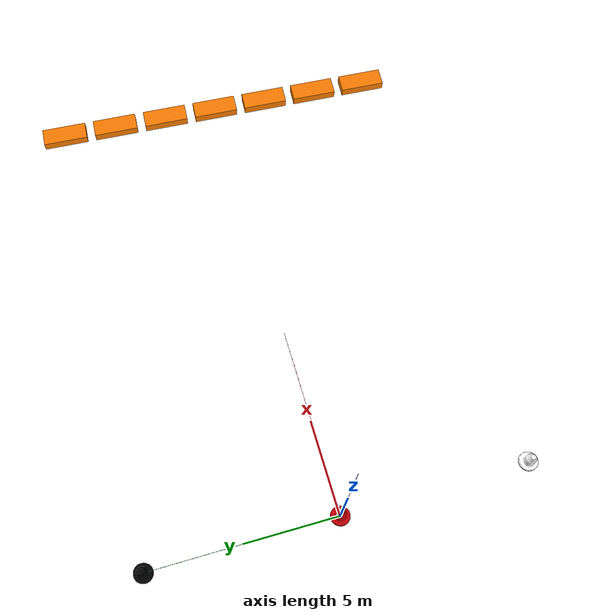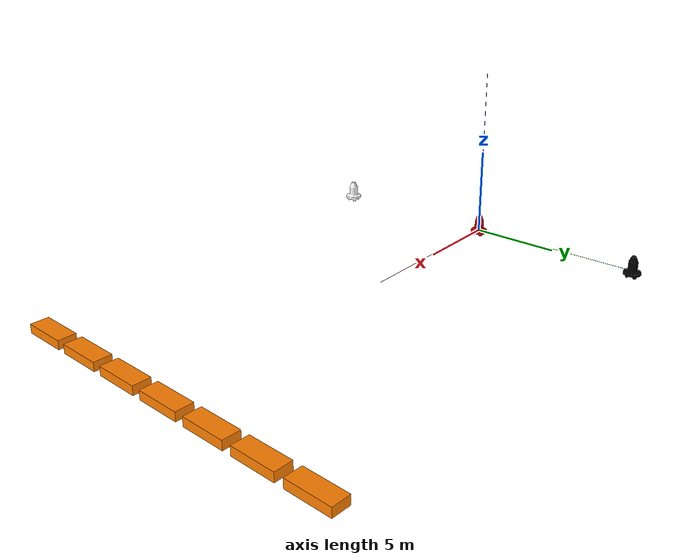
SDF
<sdf version="1.6">
 <world name="waves">
  <plugin filename="gz-sim-physics-system" name="gz::sim::systems::Physics"/>
  <plugin filename="gz-sim-sensors-system" name="gz::sim::systems::Sensors">
   <render_engine>ogre2</render_engine>
   <background_color>0.8 0.8 0.8</background_color>
  </plugin>
  <plugin filename="gz-sim-scene-broadcaster-system" name="gz::sim::systems::SceneBroadcaster"/>
  <plugin filename="gz-sim-user-commands-system" name="gz::sim::systems::UserCommands"/>
  <plugin filename="gz-sim-imu-system" name="gz::sim::systems::Imu"/>
  <scene><ambient>1.0 1.0 1.0</ambient><background>0.8 0.8 0.8</background></scene>
  <light type="directional" name="sun">
   <pose>0 0 10 0 0 0</pose>
   <diffuse>0.8 0.8 0.8 1</diffuse>
   <specular>0.6 0.6 0.6 1</specular>
   <direction>-0.5 0.1 -0.9</direction>
  </light>
  <model name="axes">
   <static>1</static>
   <link name="link">
    <visual name="r">
     <cast_shadows>0</cast_shadows>
     <pose>5 0 0.1 0 0 0</pose>
     <geometry><box><size>10 0.01 0.01</size></box></geometry>
     <material>
      <ambient>1 0 0 1</ambient>
      <diffuse>1 0 0 1</diffuse>
      <emissive>1 0 0 1</emissive>
      <specular>0.5 0.5 0.5 1</specular>
     </material>
    </visual>
    <visual name="g">
     <cast_shadows>0</cast_shadows>
     <pose>0 5 0.1 0 0 0</pose>
     <geometry><box><size>0.01 10 0.01</size></box></geometry>
     <material>
      <ambient>0 1 0 1</ambient>
      <diffuse>0 1 0 1</diffuse>
      <emissive>0 1 0 1</emissive>
      <specular>0.5 0.5 0.5 1</specular>
     </material>
    </visual>
    <visual name="b">
     <cast_shadows>0</cast_shadows>
     <pose>0 0 5.1 0 0 0</pose>
     <geometry><box><size>0.01 0.01 10</size></box></geometry>
     <material>
      <ambient>0 0 1 1</ambient>
      <diffuse>0 0 1 1</diffuse>
      <emissive>0 0 1 1</emissive>
      <specular>0.5 0.5 0.5 1</specular>
     </material>
    </visual>
   </link>
  </model>
  <include><pose>25 0 0 0 0 1.51</pose><uri>model://barrage</uri></include>
  <include><pose>0 10 0 0 0 0</pose><uri>model://surmark_buoy_black</uri></include>
  <include><uri>model://surmark_buoy_red</uri></include>
  <include><pose>0 -10 0 0 0 0</pose><uri>model://surmark_buoy_white</uri></include>
 </world>
</sdf>

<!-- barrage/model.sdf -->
<sdf version="1.6">

  <model name="barrage">

    <include>
      <pose>0 0 0 0 0 0</pose>
      <uri>model://barrage_buoy</uri>
      <name>buoy0</name>
    </include>

    <include>
      <pose>-3.0 0 0 0 0 0</pose>
      <uri>model://barrage_buoy</uri>
      <name>buoy-1</name>
    </include>

    <include>
      <pose>3.0 0 0 0 0 0</pose>
      <uri>model://barrage_buoy</uri>
      <name>buoy+1</name>
    </include>

    <include>
      <pose>-6.0 0 0 0 0 0</pose>
      <uri>model://barrage_buoy</uri>
      <name>buoy-2</name>
    </include>

    <include>
      <pose>6.0 0 0 0 0 0</pose>
      <uri>model://barrage_buoy</uri>
      <name>buoy+2</name>
    </include>

    <include>
      <pose>-9.0 0 0 0 0 0</pose>
      <uri>model://barrage_buoy</uri>
      <name>buoy-3</name>
    </include>

    <include>
      <pose>9.0 0 0 0 0 0</pose>
      <uri>model://barrage_buoy</uri>
      <name>buoy+3</name>
    </include>

    <joint type="universal" name="buoy-1_joint">
      <pose>1.5 0 0 0 0 0</pose>
      <parent>buoy0::base_link</parent>
      <child>buoy-1::base_link</child>
      <axis>
        <xyz>0 1 0</xyz>
        <limit>
          <lower>-0.78539</lower>
          <upper>0.78539</upper>
        </limit>
      </axis>
      <axis2>
        <xyz>0 0 1</xyz>
        <limit>
          <lower>-0.78539</lower>
          <upper>0.78539</upper>
        </limit>
      </axis2>
    </joint>

    <joint type="universal" name="buoy+1_joint">
      <pose>-1.5 0 0 0 0 0</pose>
      <parent>buoy0::base_link</parent>
      <child>buoy+1::base_link</child>
      <axis>
        <xyz>0 1 0</xyz>
        <limit>
          <lower>-0.78539</lower>
          <upper>0.78539</upper>
        </limit>
      </axis>
      <axis2>
        <xyz>0 0 1</xyz>
        <limit>
          <lower>-0.78539</lower>
          <upper>0.78539</upper>
        </limit>
      </axis2>
    </joint>

    <joint type="universal" name="buoy-2_joint">
      <pose>1.5 0 0 0 0 0</pose>
      <parent>buoy-1::base_link</parent>
      <child>buoy-2::base_link</child>
      <axis>
        <xyz>0 1 0</xyz>
        <limit>
          <lower>-0.78539</lower>
          <upper>0.78539</upper>
        </limit>
      </axis>
      <axis2>
        <xyz>0 0 1</xyz>
        <limit>
          <lower>-0.78539</lower>
          <upper>0.78539</upper>
        </limit>
      </axis2>
    </joint>

    <joint type="universal" name="buoy+2_joint">
      <pose>-1.5 0 0 0 0 0</pose>
      <parent>buoy+1::base_link</parent>
      <child>buoy+2::base_link</child>
      <axis>
        <xyz>0 1 0</xyz>
        <limit>
          <lower>-0.78539</lower>
          <upper>0.78539</upper>
        </limit>
      </axis>
      <axis2>
        <xyz>0 0 1</xyz>
        <limit>
          <lower>-0.78539</lower>
          <upper>0.78539</upper>
        </limit>
      </axis2>
    </joint>

    <joint type="universal" name="buoy-3_joint">
      <pose>1.5 0 0 0 0 0</pose>
      <parent>buoy-2::base_link</parent>
      <child>buoy-3::base_link</child>
      <axis>
        <xyz>0 1 0</xyz>
        <limit>
          <lower>-0.78539</lower>
          <upper>0.78539</upper>
        </limit>
      </axis>
      <axis2>
        <xyz>0 0 1</xyz>
        <limit>
          <lower>-0.78539</lower>
          <upper>0.78539</upper>
        </limit>
      </axis2>
    </joint>

    <joint type="universal" name="buoy+3_joint">
      <pose>-1.5 0 0 0 0 0</pose>
      <parent>buoy+2::base_link</parent>
      <child>buoy+3::base_link</child>
      <axis>
        <xyz>0 1 0</xyz>
        <limit>
          <lower>-0.78539</lower>
          <upper>0.78539</upper>
        </limit>
      </axis>
      <axis2>
        <xyz>0 0 1</xyz>
        <limit>
          <lower>-0.78539</lower>
          <upper>0.78539</upper>
        </limit>
      </axis2>
    </joint>

  </model>
</sdf>

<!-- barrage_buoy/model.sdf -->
<sdf version="1.6">
  <model name="barrage_buoy">
    <plugin
        filename="wave-hydrodynamics-system"
        name="gz::sim::systems::Hydrodynamics">
    </plugin>
    <link name="base_link">
      <visual name="visual">
        <geometry>
          <box>
            <size>2.5 1 0.5</size>
          </box>
        </geometry>
        <material>
          <ambient>1.0 0.5 0.0 1.0</ambient>
          <diffuse>1.0 0.5 0.0 1.0</diffuse>
          <specular>0.8 0.8 0.8 1.0</specular>
        </material>
      </visual>
      <collision name="collision">
        <geometry>
          <box>
            <size>2.5 1 0.5</size>
          </box>
        </geometry>
      </collision>
      <inertial>
        <mass>312.5</mass>
        <inertia>
          <ixx>32.5</ixx>
          <ixy>0.0</ixy>
          <ixz>0.0</ixz>
          <iyy>169.3</iyy>
          <iyz>0.0</iyz>
          <izz>188.8</izz>
        </inertia>
      </inertial>
    </link>
  </model>
</sdf>

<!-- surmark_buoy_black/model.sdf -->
<sdf version="1.6">
    <model name="surmark_buoy_black">
        <plugin
            filename="wave-hydrodynamics-system"
            name="gz::sim::systems::Hydrodynamics">
        </plugin>
        <link name="base_link">
            <inertial>
                <pose>0 0 0 0 0 0</pose>
                <mass>18.15</mass>
                <inertia>
                    <ixx>2316</ixx>
                    <ixy>0</ixy>
                    <ixz>0</ixz>
                    <iyy>2316</iyy>
                    <iyz>0</iyz>
                    <izz>0.225</izz>
                </inertia>
            </inertial>
            <collision name="collision_inner">
                <pose>0 0 0.3637 0 0 0</pose>
                <geometry>
                    <cylinder>
                        <radius>0.15</radius>
                        <length>1.26</length>
                    </cylinder>
                </geometry>
            </collision>
            <collision name="collision_outer">
                <pose>0 0 -0.1117 0 0 0</pose>
                <geometry>
                    <cylinder>
                        <radius>0.24</radius>
                        <length>0.15</length>
                    </cylinder>
                </geometry>
            </collision>
            <visual name="visual">
                <pose>0 0 0 0 0 0</pose>
                <geometry>
                    <mesh>
                        <uri>meshes/surmark950410.dae</uri>
                        <scale>2 2 1</scale>
                    </mesh>
                </geometry>
                <material>
                    <ambient>0 0 0 1</ambient>
                    <diffuse>0 0 0 1</diffuse>
                    <specular>1 1 1 1</specular>
                </material>
            </visual>
        </link>
    </model>
</sdf>

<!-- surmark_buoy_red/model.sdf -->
<sdf version="1.6">
    <model name="surmark_buoy_red">
        <plugin
            filename="wave-hydrodynamics-system"
            name="gz::sim::systems::Hydrodynamics">
        </plugin>
        <link name="base_link">
            <inertial>
                <pose>0 0 0 0 0 0</pose>
                <mass>18.15</mass>
                <inertia>
                    <ixx>2316</ixx>
                    <ixy>0</ixy>
                    <ixz>0</ixz>
                    <iyy>2316</iyy>
                    <iyz>0</iyz>
                    <izz>0.225</izz>
                </inertia>
            </inertial>
            <collision name="collision_inner">
                <pose>0 0 0.3637 0 0 0</pose>
                <geometry>
                    <cylinder>
                        <radius>0.15</radius>
                        <length>1.26</length>
                    </cylinder>
                </geometry>
            </collision>
            <collision name="collision_outer">
                <pose>0 0 -0.1117 0 0 0</pose>
                <geometry>
                    <cylinder>
                        <radius>0.24</radius>
                        <length>0.15</length>
                    </cylinder>
                </geometry>
            </collision>
            <visual name="visual">
                <pose>0 0 0 0 0 0</pose>
                <geometry>
                    <mesh>
                        <uri>meshes/surmark950410.dae</uri>
                        <scale>2 2 1</scale>
                    </mesh>
                </geometry>
                <material>
                    <ambient>0.7921 0.0039 0.0274</ambient>
                    <diffuse>0.7921 0.0039 0.0274</diffuse>
                    <specular>1 1 1 1</specular>
                </material>
            </visual>
        </link>
    </model>
</sdf>

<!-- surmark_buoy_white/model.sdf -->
<sdf version="1.6">
    <model name="surmark_buoy_white">
        <plugin
            filename="wave-hydrodynamics-system"
            name="gz::sim::systems::Hydrodynamics">
        </plugin>
        <link name="base_link">
            <inertial>
                <pose>0 0 0 0 0 0</pose>
                <mass>18.15</mass>
                <inertia>
                    <ixx>2316</ixx>
                    <ixy>0</ixy>
                    <ixz>0</ixz>
                    <iyy>2316</iyy>
                    <iyz>0</iyz>
                    <izz>0.225</izz>
                </inertia>
            </inertial>
            <collision name="collision_inner">
                <pose>0 0 0.3637 0 0 0</pose>
                <geometry>
                    <cylinder>
                        <radius>0.15</radius>
                        <length>1.26</length>
                    </cylinder>
                </geometry>
            </collision>
            <collision name="collision_outer">
                <pose>0 0 -0.1117 0 0 0</pose>
                <geometry>
                    <cylinder>
                        <radius>0.24</radius>
                        <length>0.15</length>
                    </cylinder>
                </geometry>
            </collision>
            <visual name="visual">
                <pose>0 0 0 0 0 0</pose>
                <geometry>
                    <mesh>
                        <uri>meshes/surmark950410.dae</uri>
                        <scale>2 2 1</scale>
                    </mesh>
                </geometry>
                <material>
                    <ambient>1 1 1 1</ambient>
                    <diffuse>1 1 1 1</diffuse>
                    <specular>1 1 1 1</specular>
                </material>
            </visual>
        </link>
    </model>
</sdf>
